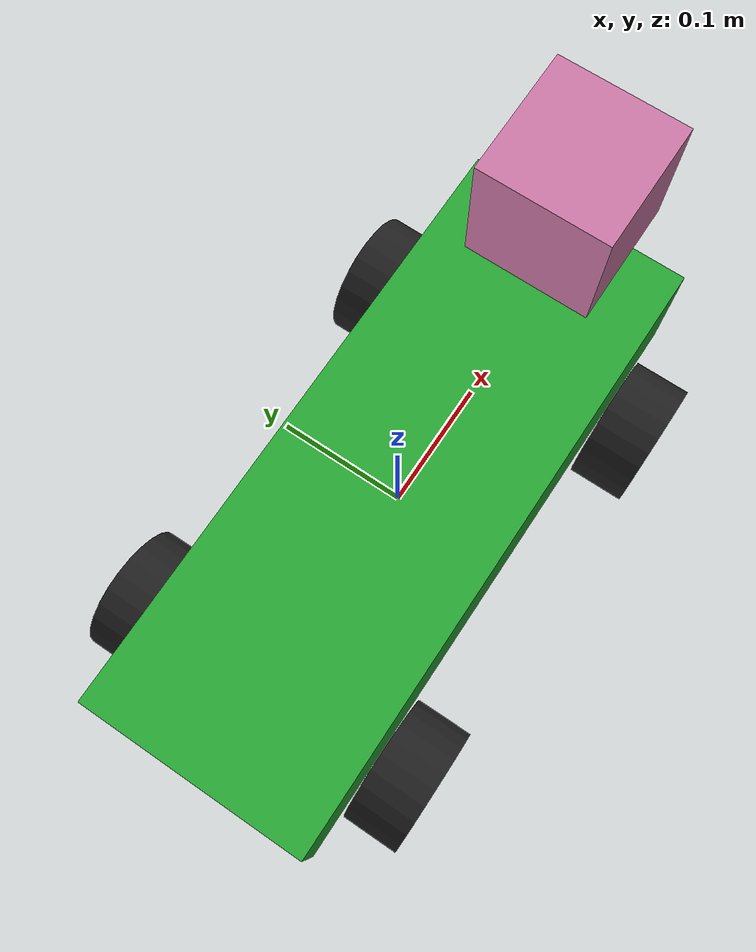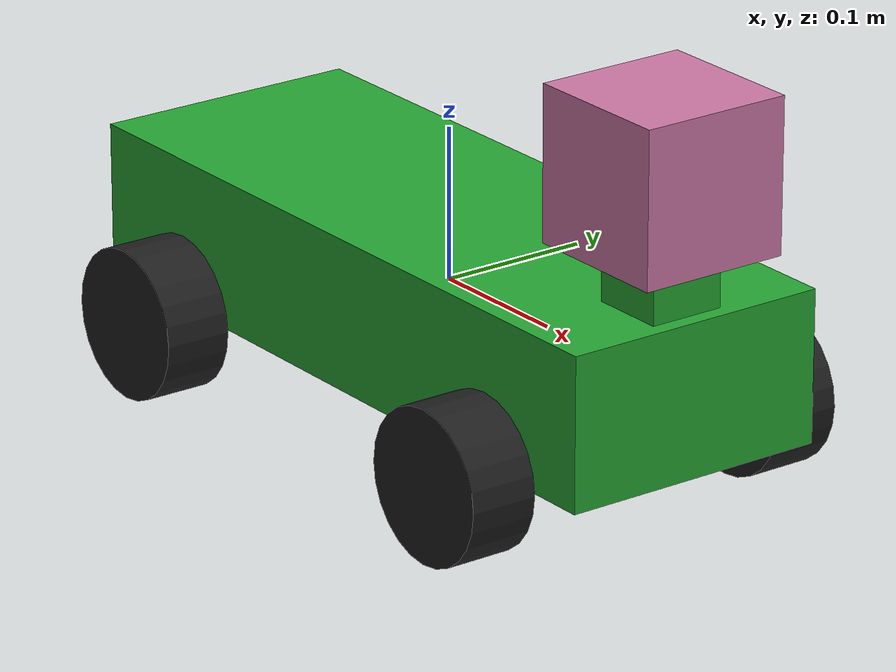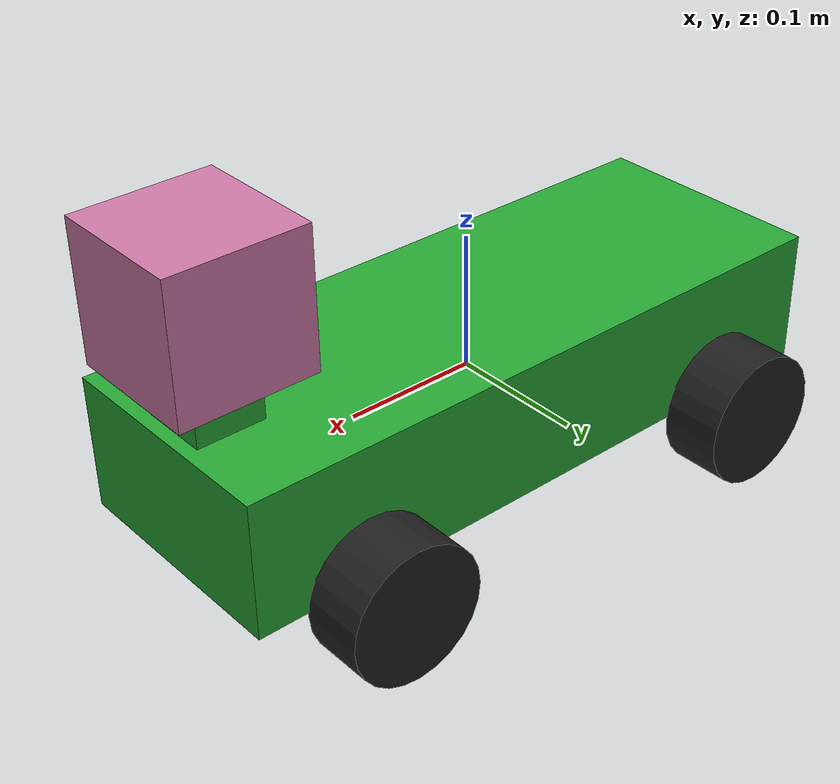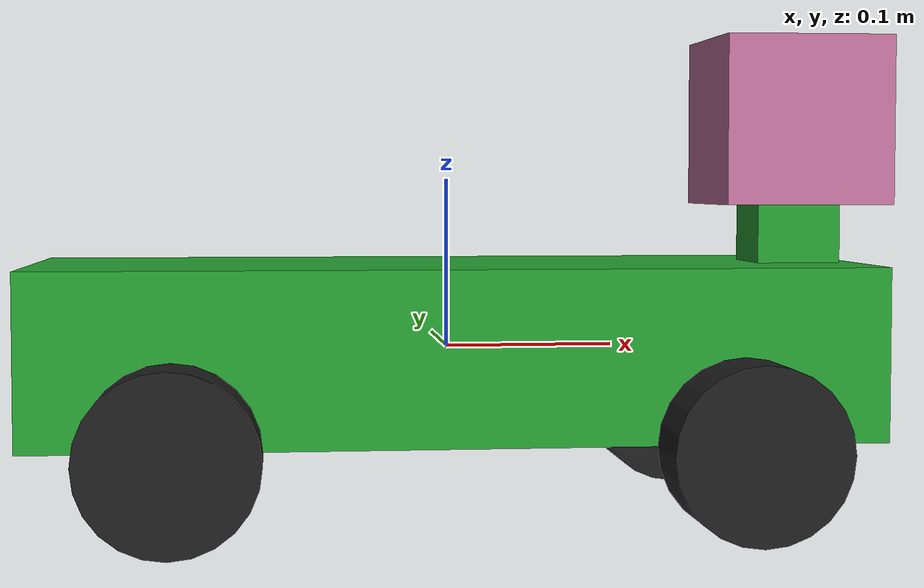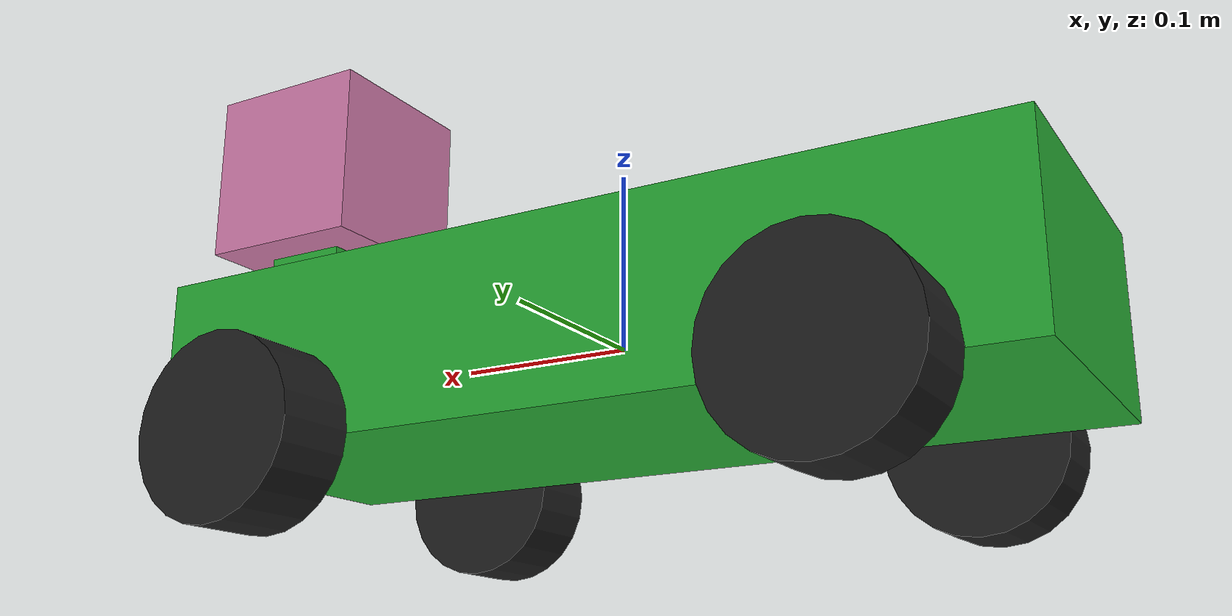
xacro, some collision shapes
<?xml version='1.0'?>

<robot name="myrobot" xmlns:xacro="http://www.ros.org/wiki/xacro">

  <xacro:include filename="$(find racer_description)/urdf/racer.gazebo" />
  <xacro:include filename="$(find racer_description)/urdf/materials.xacro" />
  <xacro:include filename="$(find racer_description)/urdf/macros.xacro" />
  <xacro:property name="cameraSize" value="0.05"/>
  <xacro:property name="cameraMass" value="0.1"/>
  <xacro:property name="cameraIner" value="(${cameraMass}/12 * (2*(${cameraSize}**2)))"/>

  <!--  body  -->
  <link name='chassis'>
    <pose>0 0 0.1 0 0 0</pose>

    <inertial>
      <mass value="10.0"/>
      <origin xyz="0.0 0 0.1" rpy=" 0 0 0"/>
      <inertia
          ixx="0.5" ixy="0" ixz="0"
          iyy="1.0" iyz="0"
          izz="0.1"
      />
    </inertial>

    <collision name='collision'>
      <geometry>
        <box size=".49 .18 .1"/>
      </geometry>
    </collision>

    <visual name='chassis_visual'>
      <origin xyz="0 0 0" rpy=" 0 0 0"/>
      <geometry>
        <box size=".49 .18 .1"/>
      </geometry>
    </visual>
  </link>

  <!--  wheels  -->
  <link name="left_wheel_front">
    <collision name="collision">
      <origin xyz="0 0.02 0" rpy="0 1.5707 1.5707"/>
      <geometry>
        <cylinder radius="0.05" length="0.045"/>
      </geometry>
    </collision>
    <visual name="left_wheel_front_visual">
      <origin xyz="0 0.02 0" rpy="0 1.5707 1.5707"/>
      <geometry>
        <cylinder radius="0.05" length="0.045"/>
      </geometry>
    </visual>
    <inertial>
      <origin xyz="0 0.02 0" rpy="0 1.5707 1.5707"/>
      <mass value="5"/>
      <cylinder_inertia m="5" r="0.05" h="0.045"/>
      <inertia
        ixx="1.0" ixy="0.0" ixz="0.0"
        iyy="1.0" iyz="0.0"
        izz="1.0"/>
    </inertial>
  </link>

  <link name="left_wheel_back">
    <collision name="collision">
      <origin xyz="0 0.02 0" rpy="0 1.5707 1.5707"/>
      <geometry>
        <cylinder radius="0.05" length="0.045"/>
      </geometry>
    </collision>
    <visual name="left_wheel_back_visual">
      <origin xyz="0 0.02 0" rpy="0 1.5707 1.5707"/>
      <geometry>
        <cylinder radius="0.05" length="0.045"/>
      </geometry>
    </visual>
    <inertial>
      <origin xyz="0 0.02 0" rpy="0 1.5707 1.5707"/>
      <mass value="5"/>
      <cylinder_inertia m="5" r="0.05" h="0.045"/>
      <inertia
        ixx="1.0" ixy="0.0" ixz="0.0"
        iyy="1.0" iyz="0.0"
        izz="1.0"/>
    </inertial>
  </link>

  <link name="right_wheel_front">
    <collision name="collision">
      <origin xyz="0 -0.02 0" rpy="0 1.5707 1.5707"/>
      <geometry>
        <cylinder radius="0.05" length="0.045"/>
      </geometry>
    </collision>
    <visual name="right_wheel_front_visual">
      <origin xyz="0 -0.02 0" rpy="0 1.5707 1.5707"/>
      <geometry>
        <cylinder radius="0.05" length="0.045"/>
      </geometry>
    </visual>
    <inertial>
      <origin xyz="0 -0.02 0" rpy="0 1.5707 1.5707"/>
      <mass value="5"/>
      <cylinder_inertia m="5" r="0.05" h="0.045"/>
      <inertia
        ixx="1.0" ixy="0.0" ixz="0.0"
        iyy="1.0" iyz="0.0"
        izz="1.0"/>
    </inertial>
  </link>

  <link name="right_wheel_back">
    <collision name="collision">
      <origin xyz="0 -0.02 0" rpy="0 1.5707 1.5707"/>
      <geometry>
        <cylinder radius="0.05" length="0.045"/>
      </geometry>
    </collision>
    <visual name="right_wheel_back_visual">
      <origin xyz="0 -0.02 0" rpy="0 1.5707 1.5707"/>
      <geometry>
        <cylinder radius="0.05" length="0.045"/>
      </geometry>
    </visual>
    <inertial>
      <origin xyz="0 -0.02 0" rpy="0 1.5707 1.5707"/>
      <mass value="5"/>
      <cylinder_inertia m="5" r="0.05" h="0.045"/>
      <inertia
        ixx="1.0" ixy="0.0" ixz="0.0"
        iyy="1.0" iyz="0.0"
        izz="1.0"/>
    </inertial>
  </link>

  <joint type="continuous" name="left_wheel_front_hinge">
    <origin xyz="0.16 0.095 -0.05" rpy="0 0 0"/>
    <child link="left_wheel_front"/>
    <parent link="chassis"/>
    <axis xyz="0 1 0" rpy="0 0 0"/>
    <limit effort="100" velocity="100"/>
    <joint_properties damping="0.0" friction="0.0"/>
  </joint>

  <joint type="continuous" name="left_wheel_back_hinge">
    <origin xyz="-0.16 0.095 -0.05" rpy="0 0 0"/>
    <child link="left_wheel_back"/>
    <parent link="chassis"/>
    <axis xyz="0 1 0" rpy="0 0 0"/>
    <limit effort="100" velocity="100"/>
    <joint_properties damping="0.0" friction="0.0"/>
  </joint>

  <joint type="continuous" name="right_wheel_front_hinge">
    <origin xyz="0.16 -0.095 -0.05" rpy="0 0 0"/>
    <child link="right_wheel_front"/>
    <parent link="chassis"/>
    <axis xyz="0 1 0" rpy="0 0 0"/>
    <limit effort="100" velocity="100"/>
    <joint_properties damping="0.0" friction="0.0"/>
  </joint>

  <joint type="continuous" name="right_wheel_back_hinge">
    <origin xyz="-0.16 -0.095 -0.05" rpy="0 0 0"/>
    <child link="right_wheel_back"/>
    <parent link="chassis"/>
    <axis xyz="0 1 0" rpy="0 0 0"/>
    <limit effort="100" velocity="100"/>
    <joint_properties damping="0.0" friction="0.0"/>
  </joint>

  <!-- Camera -->
  <link name="camera">
    <collision>
      <origin xyz="0 0 0" rpy="0 0 0"/>
      <geometry>
        <box size="${cameraSize} ${cameraSize} ${cameraSize}"/>
      </geometry>
    </collision>

    <visual>
      <origin xyz="0 0 0" rpy="0 0 0"/>
      <geometry>
        <box size="${cameraSize} ${cameraSize} ${cameraSize}"/>
      </geometry>
      <material name="green"/>
    </visual>

    <inertial>
      <mass value="${cameraMass}" />
      <origin xyz="0 0 0" rpy="0 0 0"/>
      <box_inertia m="${cameraMass}" x="${cameraSize}" y="${cameraSize}" z="${cameraSize}" />
      <inertia ixx="0.1" ixy="0" ixz="0" iyy="0.1" iyz="0" izz="0.1" />
    </inertial>
  </link>

  <joint name="camera_joint" type="fixed">
    <axis xyz="0 1 0" />
    <origin xyz=".21 0 0.075" rpy="0 0 0"/>
    <parent link="chassis"/>
    <child link="camera"/>
  </joint>

  <joint name="hokuyo_joint" type="fixed">
    <axis xyz="0 1 0" />
    <origin xyz=".21 0 .135" rpy="0 0 0"/>
    <parent link="chassis"/>
    <child link="hokuyo"/>
  </joint>

  <!-- Hokuyo Laser -->
  <link name="hokuyo">
    <collision>
      <origin xyz="0 0 0" rpy="0 0 0"/>
      <geometry>
    <box size="0.1 0.1 0.1"/>
      </geometry>
    </collision>

    <visual>
      <origin xyz="0 0 0" rpy="0 0 0"/>
      <geometry>
        <mesh filename="package://racer_description/meshes/hokuyo.dae"/>
      </geometry>
    </visual>

    <inertial>
      <mass value="1e-5" />
      <origin xyz="0 0 0" rpy="0 0 0"/>
      <inertia ixx="1e-6" ixy="0" ixz="0" iyy="1e-6" iyz="0" izz="1e-6" />
    </inertial>
  </link>

</robot>
